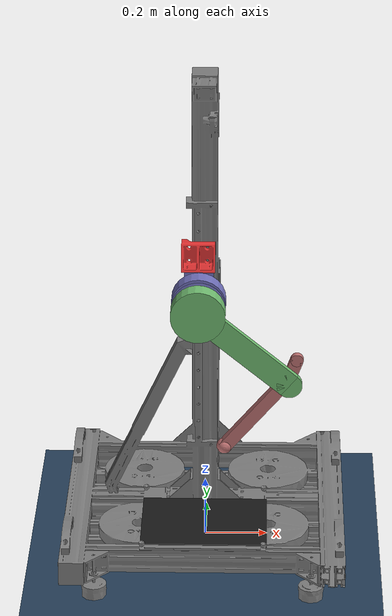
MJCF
<mujoco model="open_chain_leg_scene">
    <compiler eulerseq="zyx" angle="degree" meshdir="./assets/" texturedir="./assets/" autolimits="true"/>

    <option timestep="0.0005" gravity="0.0 0.0 -9.8"/>
    <!-- Timestep is set to 0.0005 because the standard controller runs at 2 kHz -->
    <!-- Larger values still have stable dynamics -->

    <include file="open_chain_leg.xml"/>

    <statistic center="0 0 0.55" extent="1.1"/>

    <visual>
        <headlight diffuse="0.6 0.6 0.6" ambient="0.3 0.3 0.3" specular="0 0 0"/>
        <rgba haze="0.15 0.25 0.35 1"/>
        <global azimuth="150" elevation="-20"/>
        <scale framewidth="0.02" jointwidth="0.02" actuatorlength="1.0"
                actuatorwidth="0.02" constraint="0.05" contactwidth="0.05"/>
    </visual>

    <asset>
        <texture type="skybox" builtin="gradient" rgb1="0.3 0.5 0.7" rgb2="0 0 0" width="512" height="3072"/>
        <texture type="2d" name="groundplane" builtin="checker" mark="edge" rgb1="0.2 0.3 0.4" rgb2="0.1 0.2 0.3"
        markrgb="0.8 0.8 0.8" width="300" height="300"/>
        <material name="groundplane" texture="groundplane" texuniform="true" texrepeat="5 5" reflectance="0.2"/>
    </asset>

    <worldbody>
        <light pos="0 0 3" dir="0 0 -1" directional="false"/>
        <light pos="2.0 0 3" dir="0 0 -1" directional="false"/>
        <light pos="0 2.0 3" dir="0 0 -1" directional="false"/>
        <light pos="-2.0 0 3" dir="0 0 -1" directional="false"/>
        <light pos="0 -2.0 3" dir="0 0 -1" directional="false"/>
        <geom name="floor" size="0 0 .125" type="plane" material="groundplane" conaffinity="15" condim="3"/>
    </worldbody>

</mujoco>

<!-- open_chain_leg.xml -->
<mujoco model="open_chain_leg">
    <default>
        <geom contype="1" conaffinity="0" solref="0.0005 1.0"/>

        <default class="part">
        <geom group="1" contype="2" conaffinity="1"/>
        </default>

        <default class="mockup">
        <geom group="1" contype="4"/>
        </default>

    </default>

    <asset>
        <material name="pelvis" rgba="0.45 0.45 0.75 1.0" />
        <material name="thigh" rgba="0.45 0.75 0.45 1.0" />
        <material name="shin" rgba="0.75 0.45 0.45 1.0" />
        <material name="foot" rgba="0.86 0.68 0.68 1.0" />
        <material name="loop1" rgba="0.52 0.52 0.65 1.0" />
        <material name="loop2" rgba="1.0 0.75 0.0 1.0" />
        <mesh name="cart" file="cart.STL"/>
        <mesh name="base" file="base.stl"/>
    </asset>

    <worldbody>
        <body name="base" pos="0.0 0.0 0.0">
            <geom type="mesh" mesh="base" euler="0.0 0.0 90.0"  class="mockup"/>
            <geom type="box" size="0.2 0.15 0.005" pos="0.0 -0.2 0.15" density="7700.0" rgba="0.1 0.1 0.1 1.0"/>

            <body name="cart" pos="0.0325 -0.14 1.0">
                <geom type="mesh" mesh="cart" euler="0.0 -180.0 -90.0" mass="0.2" rgba="0.9 0.2 0.2 1.0" class="mockup"/>
                <joint name="rail" type="slide" range="-0.5 0.5"/>

                <body name="pelvis" pos="-0.05 0.01 -0.085">
                    <geom type="box" size="0.045 0.01 0.085" density="750" material="pelvis" class="part"/>
                    <geom type="cylinder" size="0.085 0.0275" pos="0.0 -0.0375 0.0" zaxis="0 1 0"
                        material="pelvis" mass="1.74" class="part"/>

                    <body name="thigh" pos="0.0 -0.1325 0.0" euler="180 50 -90">
                        <!-- pos = box + 2cylinder + cylinder-->
                        <geom type="cylinder" size="0.04 0.01" pos = "0 0 -0.0575" zaxis = "0 0 1"  rgba="0.45 0.45 0.75 0.25" class="part"/>
                        <geom type="cylinder" size="0.085 0.01" pos = "0 0 -0.0375" zaxis = "0 0 1"  rgba="0.45 0.45 0.75 .25" class="part"/>
                        <geom type="cylinder" size="0.085 0.0275" pos="0.0 0.0 0.0" zaxis="0 0 1" mass="1.74" material="thigh" class="part"/>
                        <geom type="box" size="0.04 0.185 0.01" pos="0.0 0.185 0.0" density="2000" material="thigh" class="part"/>
                        <geom type="cylinder" size="0.04 0.01" pos="0 0.370 0" material="thigh" class="part"/>
                        <joint name="hip" type="hinge" ref="50" damping="0.256"/>

                        <body name="shin" pos="0.0 0.370 -0.0475" euler="-90 0 0">
                            <geom type="box" size="0.02 0.1565 0.015" pos="0.0 0.1565 0.0" density="2000" material="shin" class="part"/>
                            <geom type="cylinder" size="0.02 0.015" pos="0 0 0" material="shin" class="part"/>
                            <geom type="cylinder" size="0.02 0.015" pos="0 .313 0" material="shin" class="part"/>
                            <site name='tip' size = "0.025" pos = "0 .313 0" material ="shin"/>
                            <joint name="knee" type="hinge" ref="-90" damping="0.256"/>
                            <body pos="0 0 0" euler = "110 0 0">
                                <geom type="box" size="0.034 0.02 0.01" pos="-.034 0 0" material = "shin"  density="2000" class = "part"/>
                                <geom type="cylinder" size=".02 .01" pos="-0.068 0 0" density="2000" material ="shin"/>
                            </body>
                        </body>
                    </body>
                </body>
            </body>
        </body>

    </worldbody>

   <actuator>
		<motor name="torque_hip" joint="hip"  gear="10" ctrllimited="true" ctrlrange="-100 100"/>
		<motor name="torque_knee" joint="knee"  gear="10" ctrllimited="true" ctrlrange="-100 100"/>
    </actuator>

    <sensor>
        <jointpos name="rail_output" joint="rail"/>

        <actuatorpos name="hip_q" actuator="torque_hip"/>
        <actuatorpos name="knee_q" actuator="torque_knee"/>

        <actuatorvel name="hip_dq" actuator="torque_hip"/>
        <actuatorvel name="knee_dq" actuator="torque_knee"/>

        <actuatorfrc name="hip_trq" actuator="torque_hip"/>
        <actuatorfrc name="knee_trq" actuator="torque_knee"/>
    </sensor>

</mujoco>
